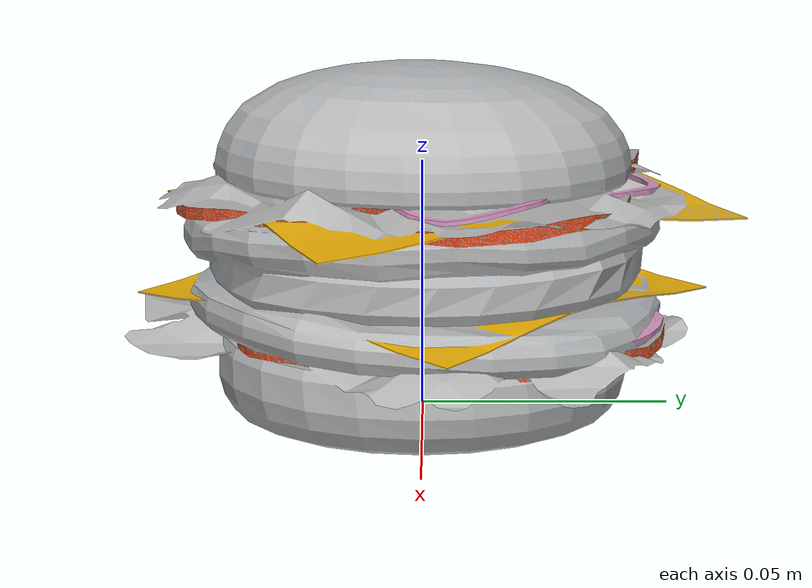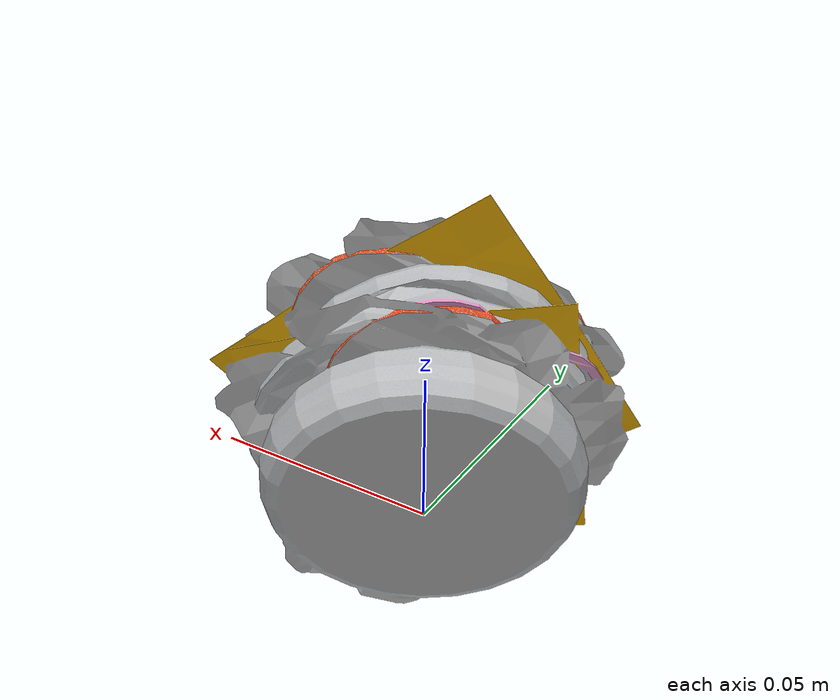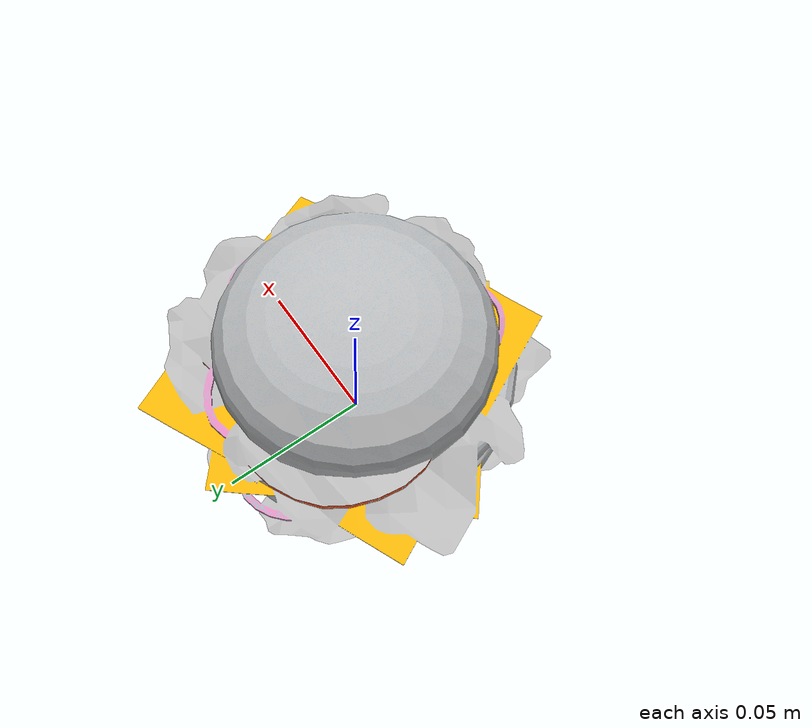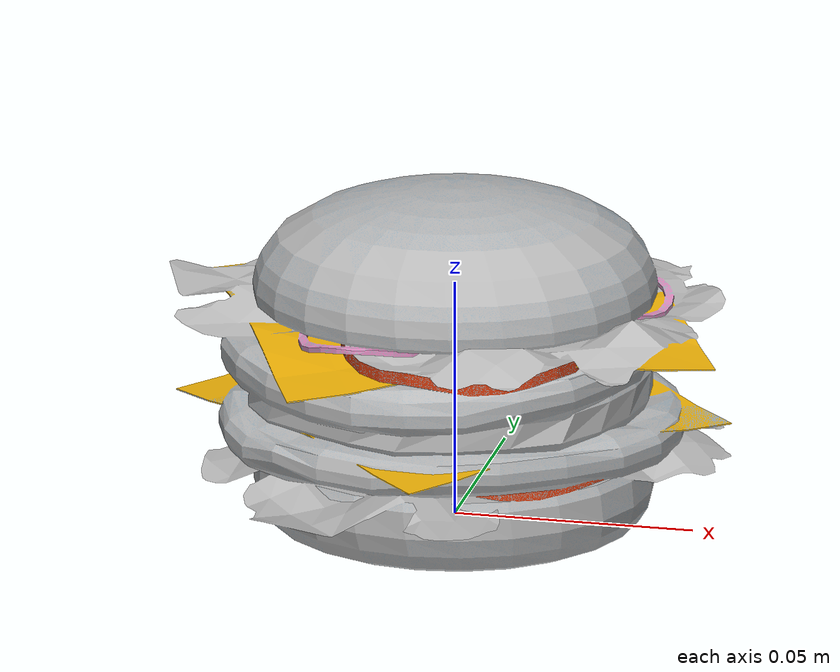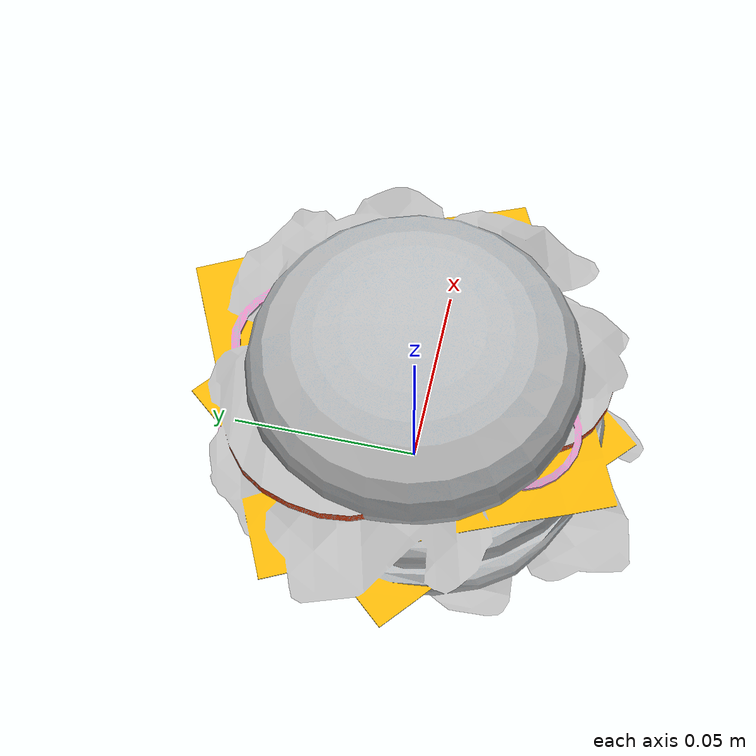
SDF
<?xml version="1.0" ?>
<sdf version="1.5">
  <model name="hamburger">
    <link name="link">
      <collision name="collision">
        <geometry>
          <mesh>
            <uri>model://hamburger/meshes/model.dae</uri>
          </mesh>
        </geometry>
      </collision>
      <visual name="visual">
        <geometry>
          <mesh>
            <uri>model://hamburger/meshes/model.dae</uri>
          </mesh>
        </geometry>
        <material>
          <script>
            <uri>model://hamburger/meshes/model</uri>
          </script>
        </material>
      </visual>
    </link>
    <static>1</static>
  </model>
</sdf>
